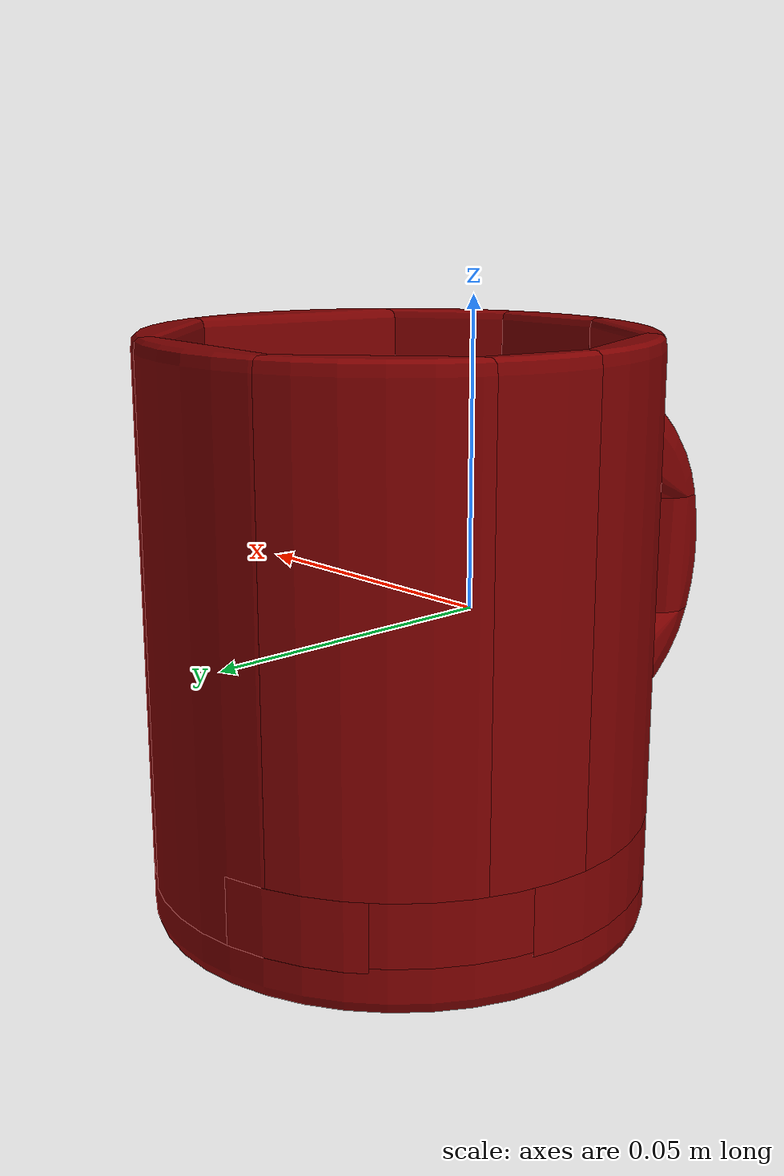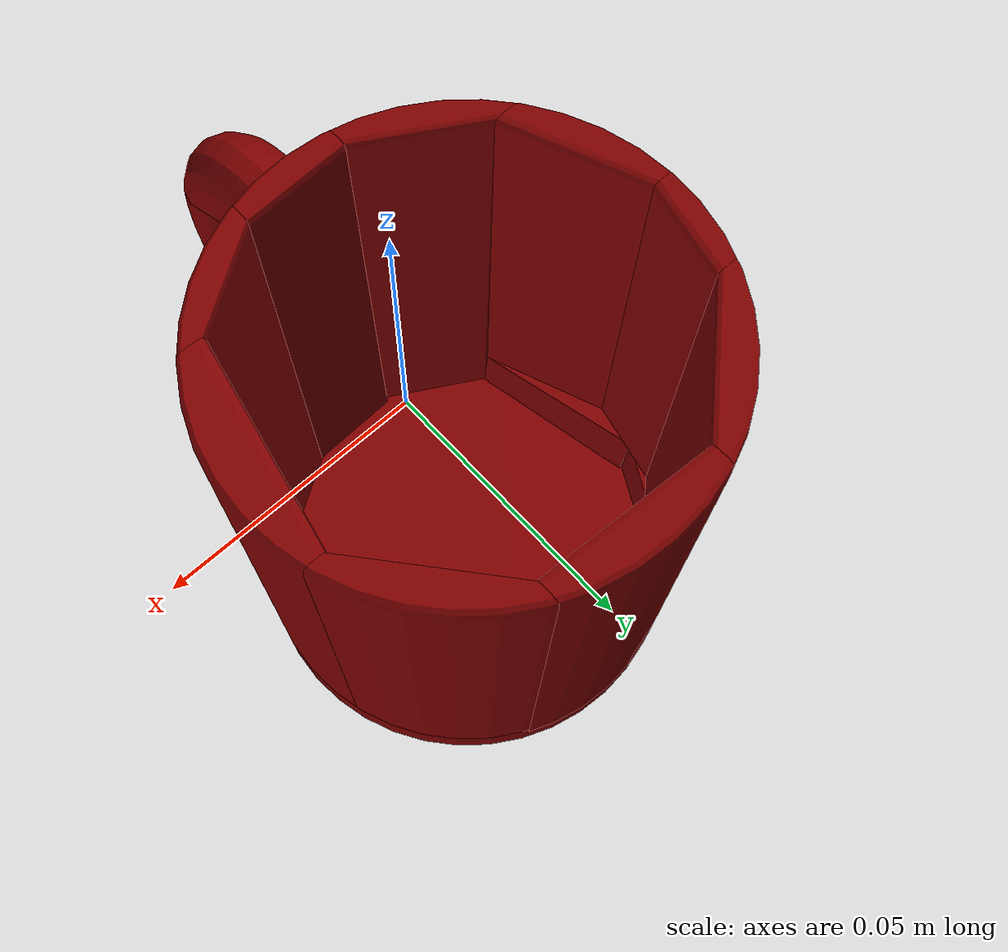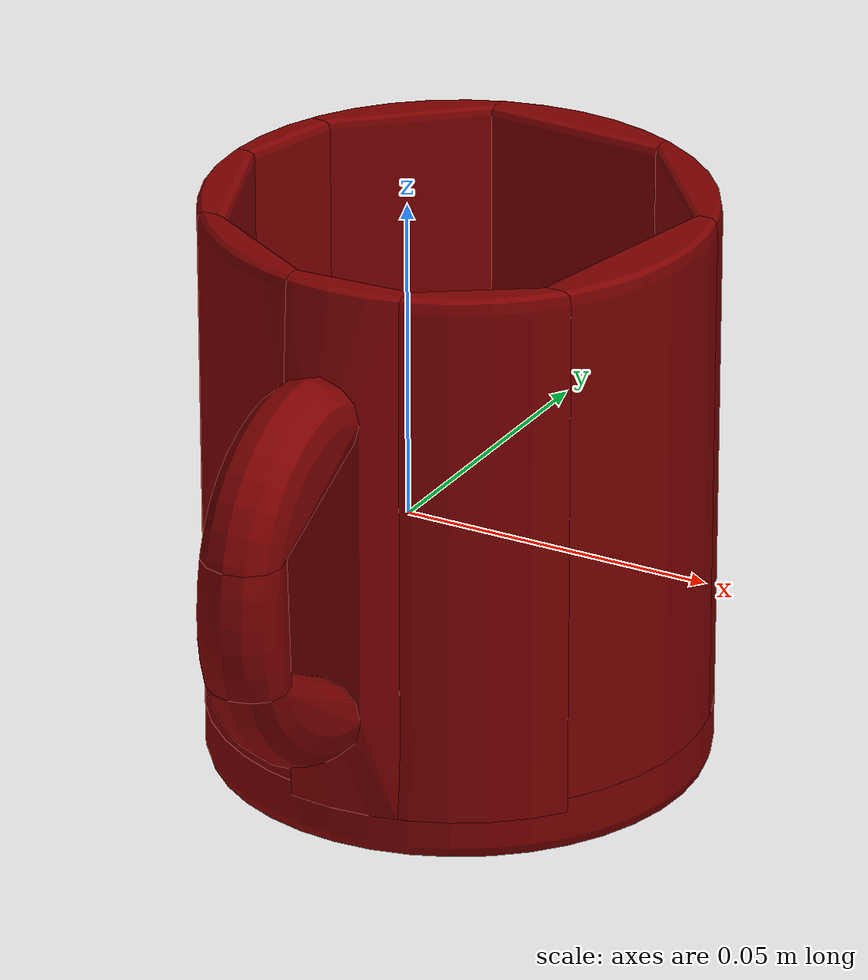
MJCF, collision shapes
<mujoco model="mug_57">
  <asset>
    <mesh file="visual/model_normalized_0.obj" name="model_normalized_0_vis" scale="0.11 0.11 0.11" refquat="0.7071067811865472 0.0 0.0 0.7071067811865476"/>
    <texture type="2d" name="image0" file="visual/image0.png"/>
    <material name="mugMat" texture="image0" specular="0.5" shininess="0.25"/>
    <mesh file="collision/collision_mesh_collision_0.obj" name="mug_collision_mesh_0" scale="0.11 0.11 0.11" refquat="0.7071067811865472 0.0 0.0 0.7071067811865476"/>
    <mesh file="collision/collision_mesh_collision_1.obj" name="mug_collision_mesh_1" scale="0.11 0.11 0.11" refquat="0.7071067811865472 0.0 0.0 0.7071067811865476"/>
    <mesh file="collision/collision_mesh_collision_2.obj" name="mug_collision_mesh_2" scale="0.11 0.11 0.11" refquat="0.7071067811865472 0.0 0.0 0.7071067811865476"/>
    <mesh file="collision/collision_mesh_collision_3.obj" name="mug_collision_mesh_3" scale="0.11 0.11 0.11" refquat="0.7071067811865472 0.0 0.0 0.7071067811865476"/>
    <mesh file="collision/collision_mesh_collision_4.obj" name="mug_collision_mesh_4" scale="0.11 0.11 0.11" refquat="0.7071067811865472 0.0 0.0 0.7071067811865476"/>
    <mesh file="collision/collision_mesh_collision_5.obj" name="mug_collision_mesh_5" scale="0.11 0.11 0.11" refquat="0.7071067811865472 0.0 0.0 0.7071067811865476"/>
    <mesh file="collision/collision_mesh_collision_6.obj" name="mug_collision_mesh_6" scale="0.11 0.11 0.11" refquat="0.7071067811865472 0.0 0.0 0.7071067811865476"/>
    <mesh file="collision/collision_mesh_collision_7.obj" name="mug_collision_mesh_7" scale="0.11 0.11 0.11" refquat="0.7071067811865472 0.0 0.0 0.7071067811865476"/>
    <mesh file="collision/collision_mesh_collision_8.obj" name="mug_collision_mesh_8" scale="0.11 0.11 0.11" refquat="0.7071067811865472 0.0 0.0 0.7071067811865476"/>
    <mesh file="collision/collision_mesh_collision_9.obj" name="mug_collision_mesh_9" scale="0.11 0.11 0.11" refquat="0.7071067811865472 0.0 0.0 0.7071067811865476"/>
    <mesh file="collision/collision_mesh_collision_10.obj" name="mug_collision_mesh_10" scale="0.11 0.11 0.11" refquat="0.7071067811865472 0.0 0.0 0.7071067811865476"/>
    <mesh file="collision/collision_mesh_collision_11.obj" name="mug_collision_mesh_11" scale="0.11 0.11 0.11" refquat="0.7071067811865472 0.0 0.0 0.7071067811865476"/>
    <mesh file="collision/collision_mesh_collision_12.obj" name="mug_collision_mesh_12" scale="0.11 0.11 0.11" refquat="0.7071067811865472 0.0 0.0 0.7071067811865476"/>
    <mesh file="collision/collision_mesh_collision_13.obj" name="mug_collision_mesh_13" scale="0.11 0.11 0.11" refquat="0.7071067811865472 0.0 0.0 0.7071067811865476"/>
    <mesh file="collision/collision_mesh_collision_14.obj" name="mug_collision_mesh_14" scale="0.11 0.11 0.11" refquat="0.7071067811865472 0.0 0.0 0.7071067811865476"/>
    <mesh file="collision/collision_mesh_collision_15.obj" name="mug_collision_mesh_15" scale="0.11 0.11 0.11" refquat="0.7071067811865472 0.0 0.0 0.7071067811865476"/>
  </asset>
  <default>
    <default class="region">
      <geom group="1" conaffinity="0" contype="0" rgba="0 1 0 0"/>
    </default>
    <default class="collision">
      <geom group="0" rgba="0.5 0 0 0.5" density="1000.0"/>
    </default>
  </default>
  <worldbody>
    <body>
      <body name="object">
        <geom solimp="0.998 0.998 0.001" solref="0.001 1" density="100" friction="0.95 0.3 0.1" type="mesh" mesh="model_normalized_0_vis" conaffinity="0" contype="0" group="1" material="mugMat"/>
        <geom class="region" name="reg_bbox" type="box" pos="-1.6500000021846263e-09 0.0 3.300000001316139e-09" size="0.03931583755 0.055 0.0456374633"/>
        <geom mesh="mug_collision_mesh_0" type="mesh" class="collision"/>
        <geom mesh="mug_collision_mesh_1" type="mesh" class="collision"/>
        <geom mesh="mug_collision_mesh_2" type="mesh" class="collision"/>
        <geom mesh="mug_collision_mesh_3" type="mesh" class="collision"/>
        <geom mesh="mug_collision_mesh_4" type="mesh" class="collision"/>
        <geom mesh="mug_collision_mesh_5" type="mesh" class="collision"/>
        <geom mesh="mug_collision_mesh_6" type="mesh" class="collision"/>
        <geom mesh="mug_collision_mesh_7" type="mesh" class="collision"/>
        <geom mesh="mug_collision_mesh_8" type="mesh" class="collision"/>
        <geom mesh="mug_collision_mesh_9" type="mesh" class="collision"/>
        <geom mesh="mug_collision_mesh_10" type="mesh" class="collision"/>
        <geom mesh="mug_collision_mesh_11" type="mesh" class="collision"/>
        <geom mesh="mug_collision_mesh_12" type="mesh" class="collision"/>
        <geom mesh="mug_collision_mesh_13" type="mesh" class="collision"/>
        <geom mesh="mug_collision_mesh_14" type="mesh" class="collision"/>
        <geom mesh="mug_collision_mesh_15" type="mesh" class="collision"/>
        <geom rgba="0 0 0 0" size="0.038 0.035" pos="0 0.015 0.0" type="cylinder" name="liquid" class="region"/>
        <geom rgba="0 0 0 0 " size="0.034 0.041" pos="0 0.015 0.003" type="cylinder" name="reg_int" class="region"/>
      </body>
    </body>
  </worldbody>
</mujoco>
